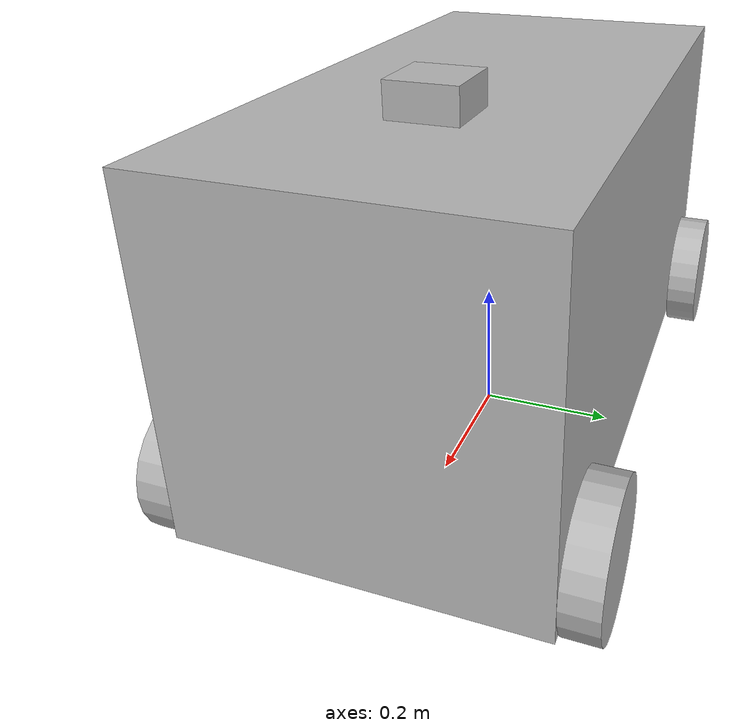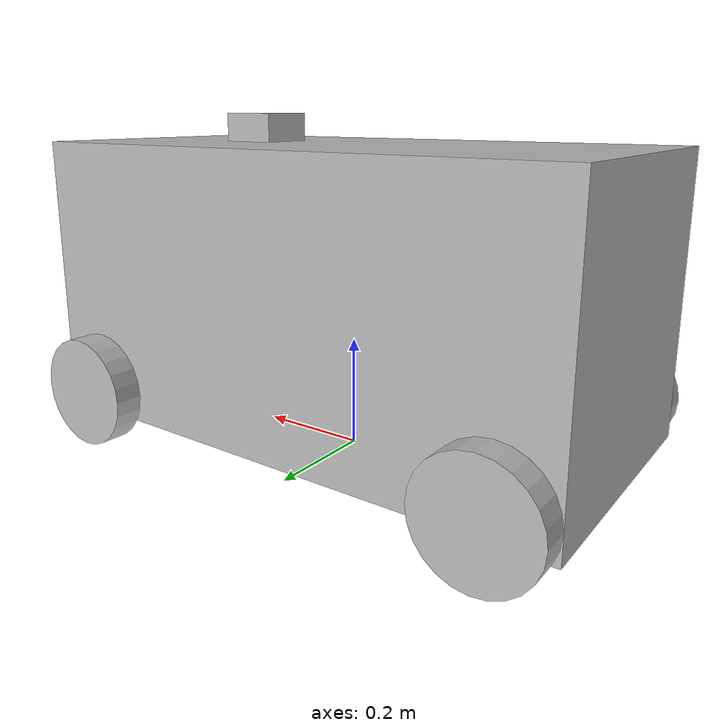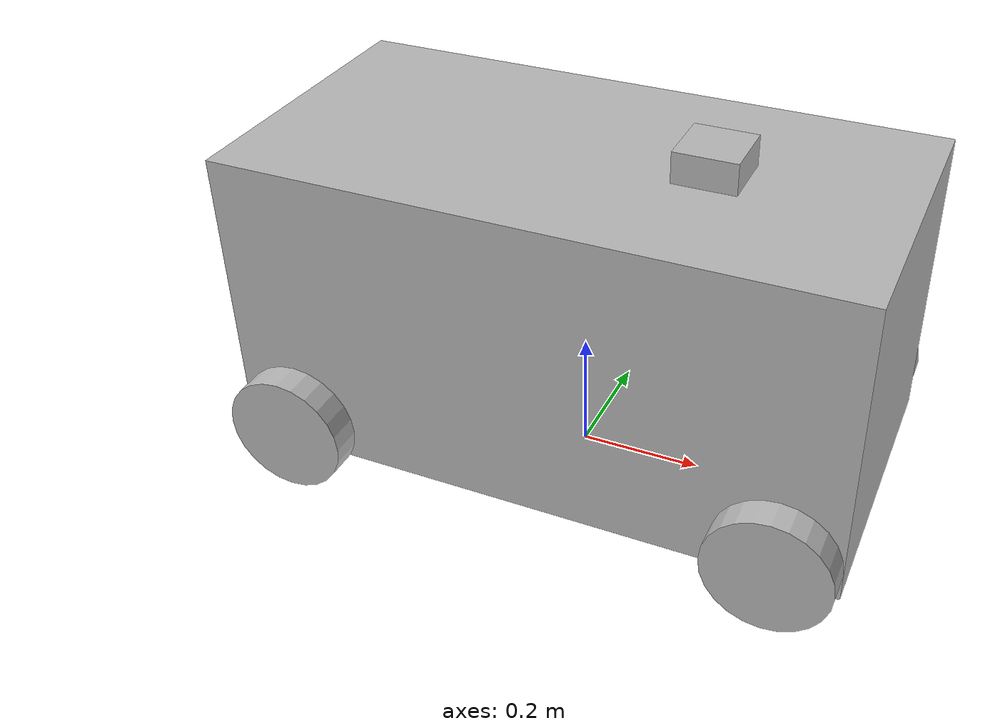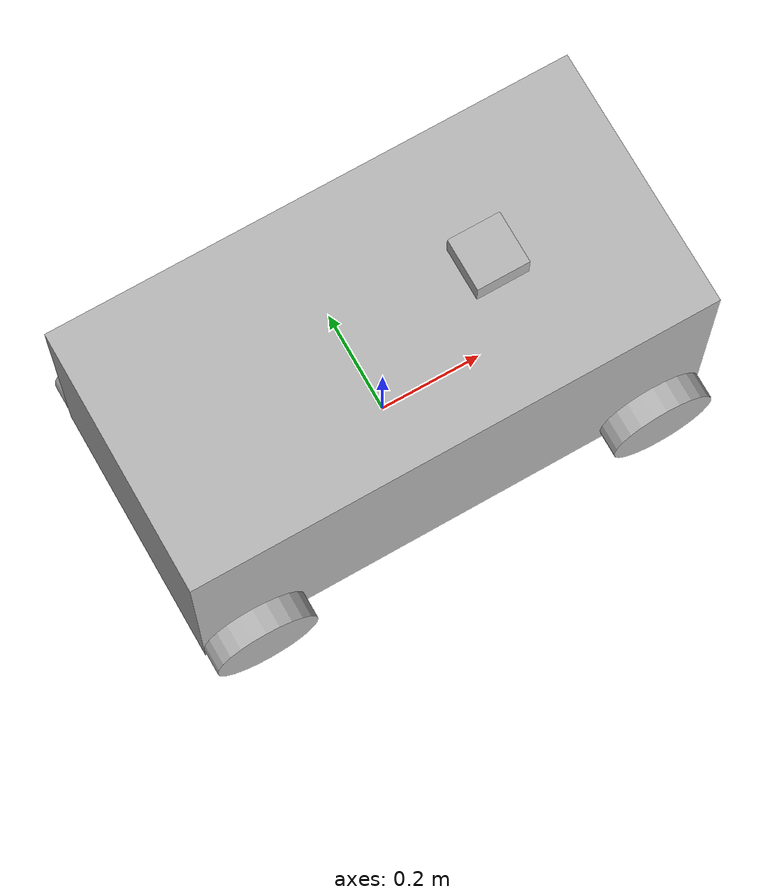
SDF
<?xml version='1.0'?>
<sdf version='1.4'>
  <model name="my_robot">
	<static>false</static>
	<link name='chassis'>
        <pose>0 0 .3 0 0 0</pose>

        <collision name='collision'>
          <geometry>
            <box>
              <size>1 .5 .5</size>
            </box>
          </geometry>
        </collision>

        <visual name='visual'>
          <geometry>
            <box>
              <size>1 .5 .5</size>
            </box>
          </geometry>
        </visual>
    </link>
	<link name="fr_wheel">
        <pose>0.4 .275 .1 0 1.5707 1.5707</pose>
        <collision name="collision">
          <geometry>
            <cylinder>
              <radius>.1</radius>
              <length>.05</length>
            </cylinder>
          </geometry>
        </collision>
        <visual name="visual">
          <geometry>
            <cylinder>
              <radius>.1</radius>
              <length>.05</length>
            </cylinder>
          </geometry>
        </visual>
      </link>
	<link name="fl_wheel">
        <pose>0.4 -.275 .1 0 1.5707 1.5707</pose>
        <collision name="collision">
          <geometry>
            <cylinder>
              <radius>.1</radius>
              <length>.05</length>
            </cylinder>
          </geometry>
        </collision>
        <visual name="visual">
          <geometry>
            <cylinder>
              <radius>.1</radius>
              <length>.05</length>
            </cylinder>
          </geometry>
        </visual>
      </link>
	<link name="br_wheel">
        <pose>-0.4 .275 .1 0 1.5707 1.5707</pose>
        <collision name="collision">
          <geometry>
            <cylinder>
              <radius>.1</radius>
              <length>.05</length>
            </cylinder>
          </geometry>
        </collision>
        <visual name="visual">
          <geometry>
            <cylinder>
              <radius>.1</radius>
              <length>.05</length>
            </cylinder>
          </geometry>
        </visual>
      </link>
	<link name="bl_wheel">
        <pose>-0.4 -.275 .1 0 1.5707 1.5707</pose>
        <collision name="collision">
          <geometry>
            <cylinder>
              <radius>.1</radius>
              <length>.05</length>
            </cylinder>
          </geometry>
        </collision>
        <visual name="visual">
          <geometry>
            <cylinder>
              <radius>.1</radius>
              <length>.05</length>
            </cylinder>
          </geometry>
        </visual>
      </link>
	<joint type="revolute" name="fr_wheel_hinge">
		<pose>0 0 0.03 0 0 0</pose>
        <child>fr_wheel</child>
        <parent>chassis</parent>
        <axis>
          <xyz>0 1 0</xyz>
        </axis>
	</joint>
	<joint type="revolute" name="fl_wheel_hinge">
		<pose>0 0 0.03 0 0 0</pose>
        <child>fl_wheel</child>
        <parent>chassis</parent>
        <axis>
          <xyz>0 1 0</xyz>
        </axis>
	</joint>
	<joint type="revolute" name="br_wheel_hinge">
		<pose>0 0 0.03 0 0 0</pose>
        <child>br_wheel</child>
        <parent>chassis</parent>
        <axis>
          <xyz>0 1 0</xyz>
        </axis>
	</joint>
	<joint type="revolute" name="bl_wheel_hinge">
		<pose>0 0 0.03 0 0 0</pose>
        <child>bl_wheel</child>
        <parent>chassis</parent>
        <axis>
          <xyz>0 1 0</xyz>
        </axis>
	</joint>
	 <joint type="revolute" name="right_wheel_hinge">
        <pose>0 0 0.03 0 0 0</pose>
        <child>fr_wheel</child>
        <parent>chassis</parent>
        <axis>
          <xyz>0 1 0</xyz>
        </axis>
      </joint>

	<!-- adding sensors to the robot-->
	<include>
      <uri>model://depth_camera</uri>
      <pose>0.2 0 0.5 0 0 0</pose>
    </include>
    <joint name="dp_joint" type="fixed">
      <child>depth_camera::link</child>
      <parent>chassis</parent>
    </joint>
  </model>
</sdf>

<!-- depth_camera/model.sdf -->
<sdf version="1.6">
  <model name="depth_camera">
    <link name="link">
      <pose>0 0 0.05 0 0 0</pose>
      <inertial>
        <mass>0.1</mass>
        <inertia>
          <ixx>0.000166667</ixx>
          <iyy>0.000166667</iyy>
          <izz>0.000166667</izz>
        </inertia>
      </inertial>
      <collision name="collision">
        <geometry>
          <box>
            <size>0.1 0.1 0.1</size>
          </box>
        </geometry>
      </collision>
      <visual name="visual">
        <geometry>
          <box>
            <size>0.1 0.1 0.1</size>
          </box>
        </geometry>
      </visual>
      <sensor name="camera" type="depth">
        <camera>
          <horizontal_fov>1.047</horizontal_fov>
          <image>
            <width>320</width>
            <height>240</height>
          </image>
          <clip>
            <near>0.1</near>
            <far>10</far>
          </clip>
        </camera>
        <always_on>1</always_on>
        <update_rate>30</update_rate>
        <visualize>true</visualize>
      </sensor>
    </link>
  </model>
</sdf>
